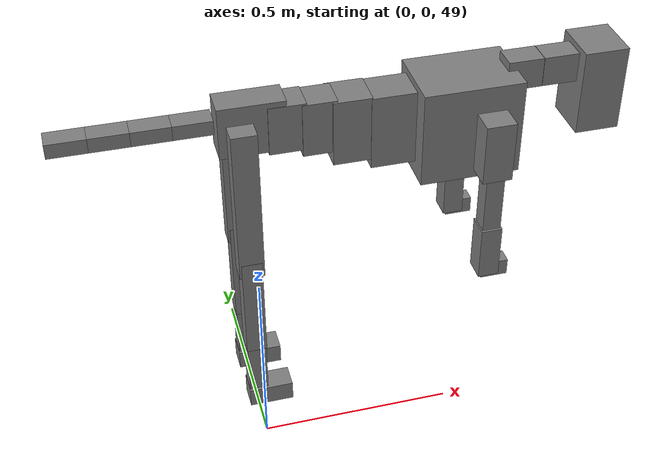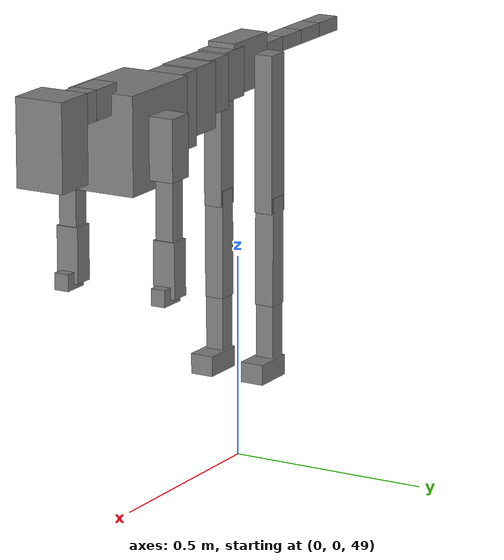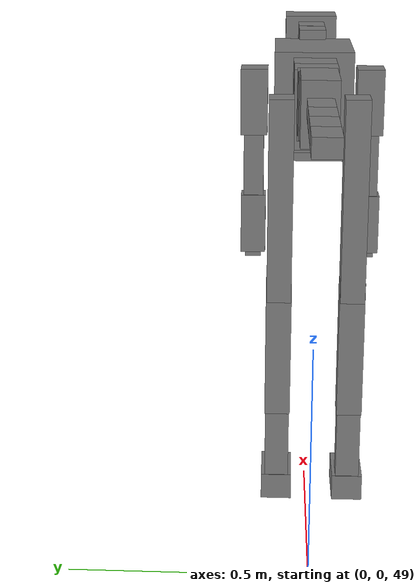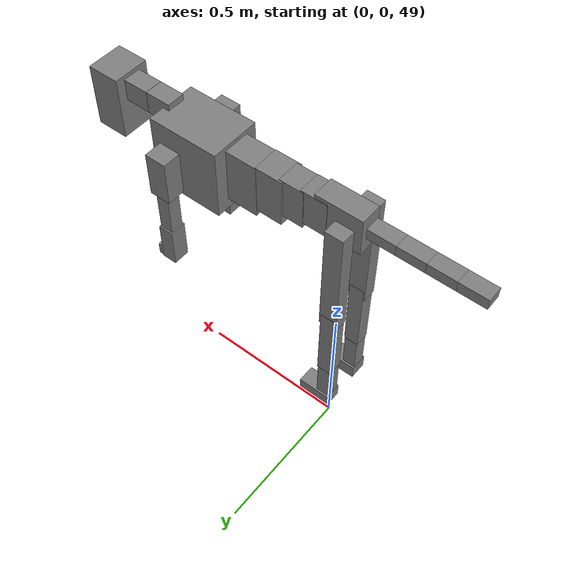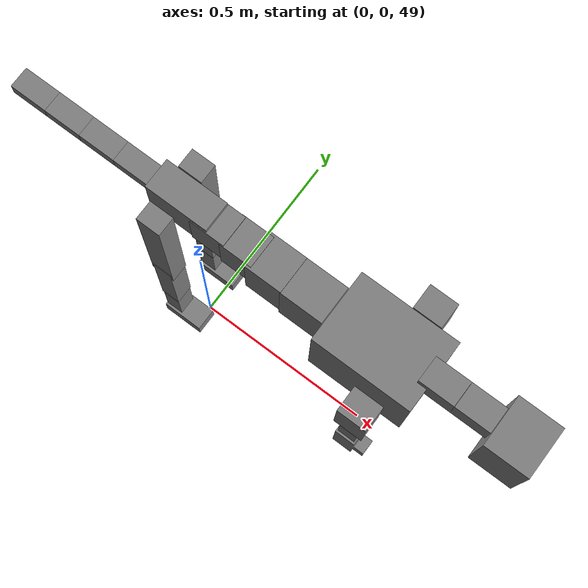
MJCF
<mujoco model="dog">

    <default>
        <joint armature="0.02" stiffness="1" damping="0.2" limited="true"/>
        <geom condim="3" friction="1 0.05 0.05" margin="0.01"/>
        <motor ctrllimited="true" ctrlrange="-1.0 1.0" forcelimited="true" gear="50"/>
    </default>

    <compiler inertiafromgeom="true" angle="radian"/>

    <option timestep="0.016" iterations="50" tolerance="1e-10" solver="Newton" jacobian="dense" cone="pyramidal"/>

    <size nconmax="20000" njmax="60000" nstack="5000000"/>
    <visual>
        <map force="0.1" zfar="30"/>
        <rgba haze="0.15 0.25 0.35 1"/>
        <quality shadowsize="2048"/>
        <global offwidth="800" offheight="800"/>
    </visual>

    <asset>
        <texture type="skybox" builtin="gradient" rgb1="0.3 0.5 0.7" rgb2="0 0 0" width="512" height="512"/>
        <texture name="texplane" type="2d" builtin="checker" rgb1=".2 .3 .4" rgb2=".1 0.15 0.2" width="512" height="512"
                 mark="cross" markrgb=".8 .8 .8"/>
        <texture name="texgeom" type="cube" builtin="flat" mark="cross" width="127" height="1278" rgb1="0.8 0.6 0.4"
                 rgb2="0.8 0.6 0.4" markrgb="1 1 1" random="0.01"/>

        <material name="matplane" reflectance="0.3" texture="texplane" texrepeat="1 1" texuniform="true"/>
        <material name="matgeom" texture="texgeom" texuniform="true" rgba="0.8 0.6 .4 1"/>
    </asset>

    <worldbody>
        <geom name="floor" pos="0 0 0" size="0 0 .25" type="plane" material="matplane" condim="3"/>

        <light directional="false" diffuse=".2 .2 .2" specular="0 0 0" pos="0 0 5" dir="0 0 -1" castshadow="false"/>
        <light mode="targetbodycom" target="torso" directional="false" diffuse=".8 .8 .8" specular="0.3 0.3 0.3"
               pos="0 0 4.0" dir="0 0 -1"/>

        <body name="root" pos="0 0 50">
            <freejoint name="root_1"/>
            <geom type="box" pos="0 0 -0.02" size="0.0774  0.0358  0.063" density="2030"/>

            <body name="spine1" pos="0.054 0 0">
                <joint name="spine1_y" axis="0 1 0" range="0 0.7" limited="true"/>
                <geom type="box" pos="0.02375 0 -0.03" size="0.04375  0.0375  0.05985" density="2030"/>

                <body name="spine2" pos="0.0612 0 0">
                    <joint name="spine2_y" axis="0 1 0" range="-0.15 0.15" limited="true"/>
                    <geom type="box" pos="0.03555  0  -0.04" size="0.04055  0.039  0.06615" density="2030"/>

                    <body name="spine3" pos="0.0730 0 0">
                        <joint name="spine3_y" axis="0 1 0" range="-0.15 0.15" limited="true"/>
                        <geom type="box" pos="0.03555  0  -0.057" size="0.04555  0.0445  0.081" density="2030"/>

                        <body name="spine4" pos="0.0780 0 0">
                            <joint name="spine4_y" axis="0 1 0" range="-0.15 0.15" limited="true"/>
                            <geom type="box" pos="0.05265  0  -0.07" size="0.05265  0.045  0.09135" density="2030"/>

                            <body name="torso" pos="0.1082 0 0">
                                <joint name="torso_y" axis="0 1 0" range="-0.15 0.15" limited="true"/>
                                <geom type="box" pos="0.11925  0  -0.085" size="0.11925  0.085  0.11745"
                                      density="2030"/>

                                <body name="neck1" pos="0.2160  0   0.0180">
                                    <joint name="neck1_y" axis="0 1 0" range="-1.2  -1" limited="true"/>
                                    <geom type="box" pos="0.0423  0  0" size="0.0423  0.03  0.036" density="2325"/>

                                    <body name="neck2" pos="0.0853  0  0">
                                        <joint name="neck2_y" axis="0 1 0" range="0.1  0" limited="true"/>
                                        <geom type="box" pos="0.0423  0  0" size="0.0423  0.03  0.036" density="2325"/>

                                        <body name="head" pos="0.0853  0  0">
                                            <joint name="head_y" axis="0 1 0" range="-0.3  -0.2" limited="true"/>
                                            <geom type="box" pos="0.0531  0  -0.055" size="0.0531  0.06  0.1044"
                                                  density="4030"/>

                                        </body>
                                    </body>
                                </body>

                                <body name="front_shoulder" pos="0.156  0   -0.0480">
                                    <joint name="front_shoulder_y" axis="0 1 0" range="-1 1.5" limited="true"/>
                                    <geom type="box" pos="0 0.13 -0.0478" size="0.0354  0.0303  0.0744" density="1158"/>
                                    <geom type="box" pos="0 -0.13 -0.0478" size="0.0354  0.0303  0.0744"
                                          density="1158"/>

                                    <body name="front_elbow" pos="0  0  -0.0955">
                                        <joint name="front_elbow_y" axis="0 1 0" range="-2 0" limited="true"/>
                                        <geom type="box" pos="0 0.13 -0.0908" size="0.0220  0.0225  0.0908"
                                              density="1081"/>
                                        <geom type="box" pos="0 -0.13 -0.0908" size="0.0220  0.0225  0.0908"
                                              density="1081"/>

                                        <body name="front_wrist" pos="0  0  -0.1817">
                                            <joint name="front_wrist_y" axis="0 1 0" range="-0.2 0" limited="true"/>
                                            <geom type="box" pos="0 0.13 -0.0542" size="0.0252  0.0280  0.0674"
                                                  density="1664"/>
                                            <geom type="box" pos="0 -0.13 -0.0542" size="0.0252  0.0280  0.0674"
                                                  density="1664"/>

                                            <body name="front_finger_end" pos="0  0  -0.1084">
                                                <joint name="front_finger_y" axis="0 1 0" range="-0.4 1"
                                                       limited="true"/>
                                                <geom type="box" pos="0.0182  0.13  -0.0054"
                                                      size="0.0334  0.0182  0.0204" density="1515"/>
                                                <geom type="box" pos="0.0182  -0.13  -0.0054"
                                                      size="0.0334  0.0182  0.0204" density="1515"/>

                                            </body>

                                        </body>
                                    </body>
                                </body>

                            </body>
                        </body>
                    </body>
                </body>
            </body>

            <body name="back_hip" pos="-0.03 0 -0.018">
                <joint name="back_hip_y" axis="0 1 0" range="-1.5 0.3" limited="true"/>
                <geom type="box" pos="0 0.07 -0.1717" size="0.0298  0.0234  0.1945" density="1154"/>
                <geom type="box" pos="0 -0.07 -0.1717" size="0.0298  0.0234  0.1945" density="1154"/>

                <body name="back_knee" pos="0  0  -0.3433">
                    <joint name="back_knee_y" axis="0 1 0" range="0 2.8" limited="true"/>
                    <geom type="box" pos="0 0.07 -0.1188" size="0.0246  0.0243  0.1343" density="1227"/>
                    <geom type="box" pos="0 -0.07 -0.1188" size="0.0246  0.0243  0.1343" density="1227"/>

                    <body name="back_ankle" pos="0  0  -0.2376">
                        <joint name="back_ankle_y" axis="0 1 0" range="-2.2 0" limited="true"/>
                        <geom type="box" pos="0 0.07 -0.0806" size="0.0229  0.0229  0.0918" density="1284"/>
                        <geom type="box" pos="0 -0.07 -0.0806" size="0.0229  0.0229  0.0918" density="1284"/>

                        <body name="back_toe_end" pos="0  0  -0.1611">
                            <joint name="back_toe_y" axis="0 1 0" range="-0.4 1" limited="true"/>
                            <geom type="box" pos="0.0295  0.07  -0.0102" size="0.0540  0.0295  0.0252" density="1515"/>
                            <geom type="box" pos="0.0295  -0.07  -0.0102" size="0.0540  0.0295  0.0252" density="1515"/>

                        </body>
                    </body>
                </body>
            </body>

            <body name="tail1" pos="-0.074 0 -0.006">
                <joint name="tail1_y" axis="0 1 0" range="-0.2 0.2" limited="true"/>
                <geom type="box" pos="-0.0536  0  0" size="0.045  0.025  0.0175" density="1587"/>

                <body name="tail2" pos="-0.09 0 0">
                    <joint name="tail2_y" axis="0 1 0" range="-0.2 0.2" limited="true"/>
                    <geom type="box" pos="-0.0536  0  0" size="0.045  0.025  0.0175" density="1587"/>

                    <body name="tail3" pos="-0.09 0 0">
                        <joint name="tail3_y" axis="0 1 0" range="-0.2 0.2" limited="true"/>
                        <geom type="box" pos="-0.0536  0  0" size="0.045  0.025  0.0175" density="1587"/>

                        <body name="tail4" pos="-0.09 0 0">
                            <joint name="tail4_y" axis="0 1 0" range="-0.2 0.2" limited="true"/>
                            <geom type="box" pos="-0.0536  0  0" size="0.045  0.025  0.0175" density="1587"/>

                        </body>
                    </body>
                </body>
            </body>
        </body>
    </worldbody>

    <actuator>
        <motor joint="spine1_y" forcerange="-150 150     "/>
        <motor joint="spine2_y" forcerange="-150 150     "/>
        <motor joint="spine3_y" forcerange="-150 150     "/>
        <motor joint="spine4_y" forcerange="-150 150     "/>
        <motor joint="torso_y" forcerange="-150 150     "/>
        <motor joint="neck1_y" forcerange="-100 100       "/>
        <motor joint="neck2_y" forcerange="-100 100       "/>
        <motor joint="head_y" forcerange="-150 150       "/>
        <motor joint="front_shoulder_y" forcerange="-185.24 116.45"/>
        <motor joint="front_elbow_y" forcerange="-104.50 158.80"/>
        <motor joint="front_wrist_y" forcerange="-107.93 116.04"/>
        <motor joint="front_finger_y" forcerange="-36.25 21.01"/>
        <motor joint="back_hip_y" forcerange="-207.38 304.63"/>
        <motor joint="back_knee_y" forcerange="-283.97 268.91"/>
        <motor joint="back_angle_y" forcerange="-179.91 86.94"/>
        <motor joint="back_toe_y" forcerange="-112.79 42.98"/>
        <motor joint="tail1_y" forcerange="-50 50     "/>
        <motor joint="tail2_y" forcerange="-50 50     "/>
        <motor joint="tail3_y" forcerange="-50 50     "/>
        <motor joint="tail4_y" forcerange="-50 50     "/>
    </actuator>
</mujoco>
